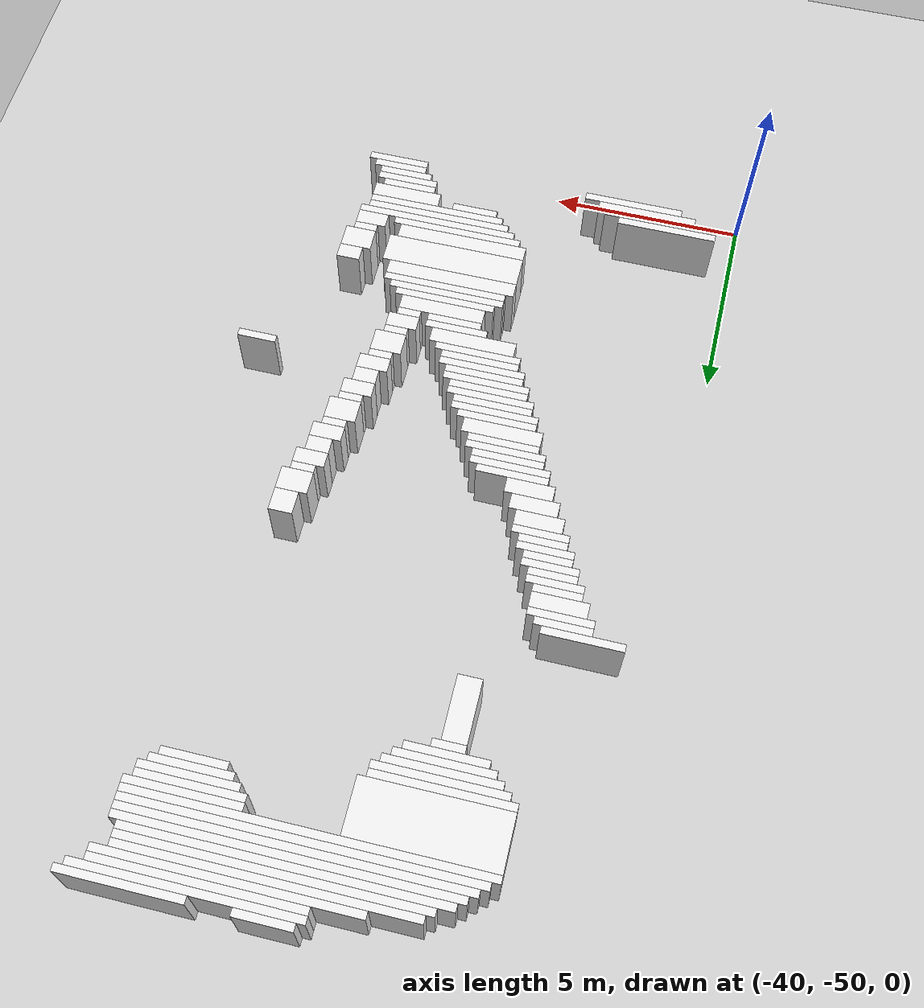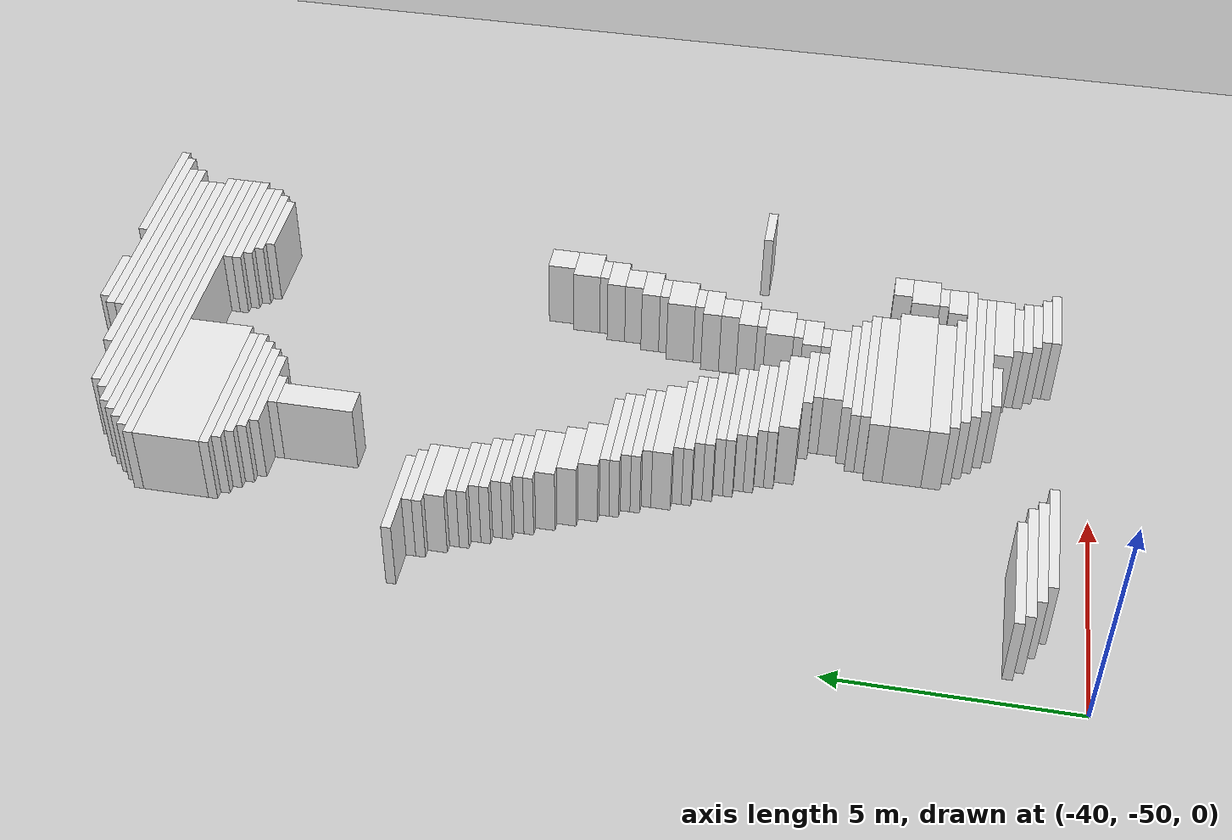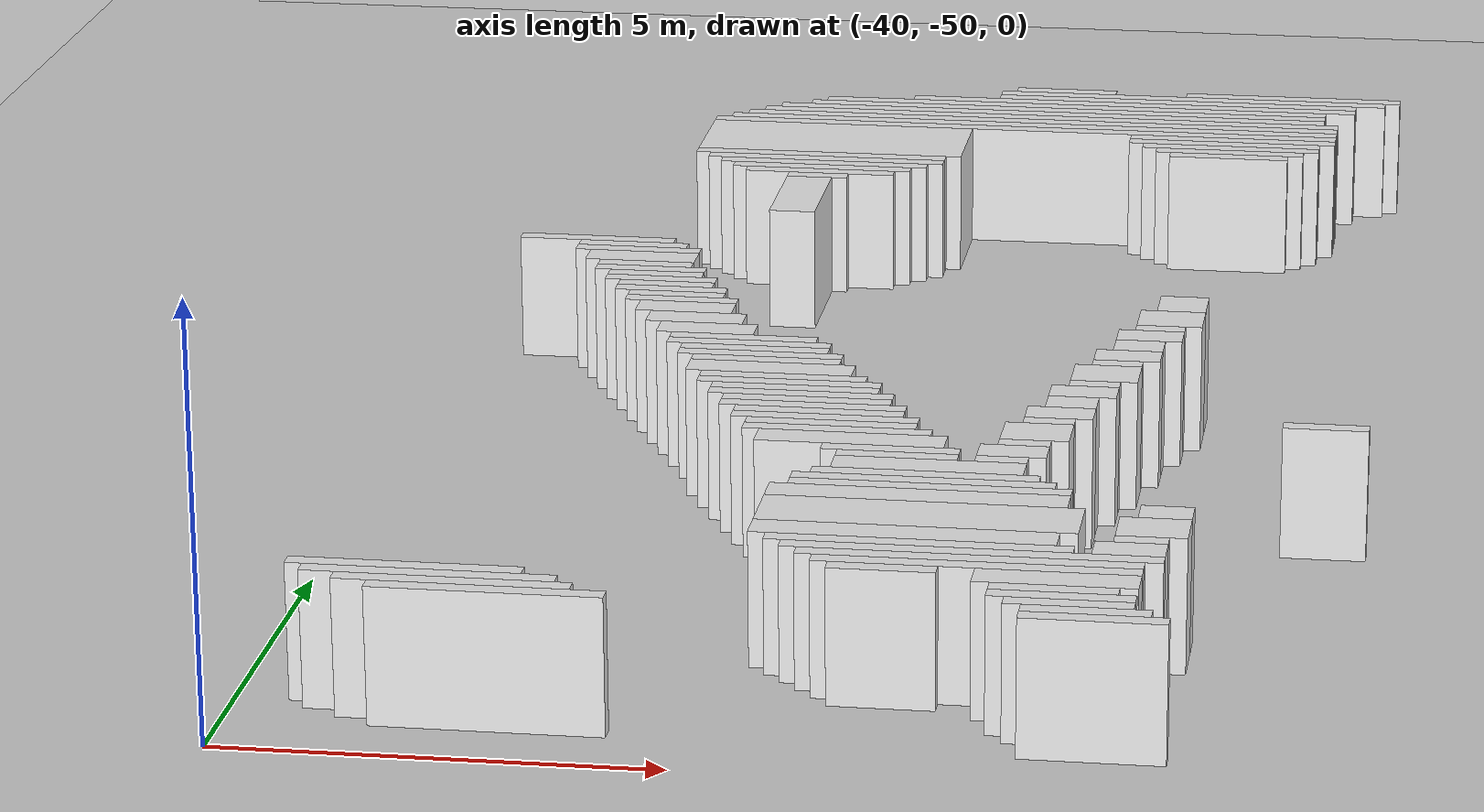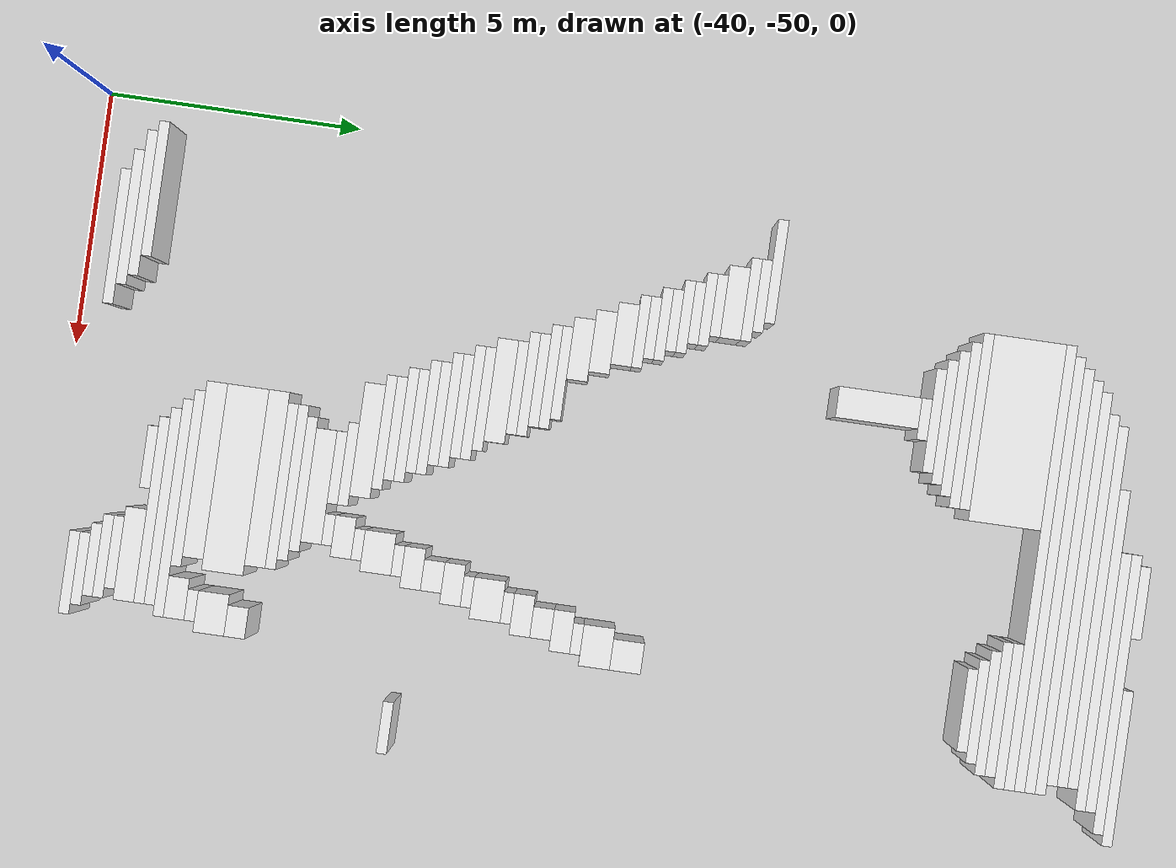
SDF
<sdf version="1.7">
 <world name="default">
  <model name="ground_plane">
   <static>1</static>
   <link name="link">
    <collision name="collision">
     <geometry><plane><normal>0 0 1</normal><size>120 120</size></plane></geometry>
    </collision>
    <visual name="visual">
     <geometry><plane><normal>0 0 1</normal><size>120 120</size></plane></geometry>
     <material>
      <script><uri>file://media/materials/scripts/gazebo.material</uri><name>Gazebo/Grey</name></script>
     </material>
    </visual>
   </link>
  </model>
  <model name="random_complex_01_model">
   <static>1</static>
   <link name="obs_2889">
    <pose>-32.9000 -28.7000 0.8000 0 0 0</pose>
    <collision name="obs_2889_col"><geometry><box><size>1.4000 0.2000 1.6000</size></box></geometry></collision>
    <visual name="obs_2889_vis">
     <geometry><box><size>1.4000 0.2000 1.6000</size></box></geometry>
     <material>
      <script><uri>file://media/materials/scripts/gazebo.material</uri><name>Gazebo/White</name></script>
     </material>
    </visual>
   </link>
   <link name="obs_2890">
    <pose>-29.7000 -28.7000 0.8000 0 0 0</pose>
    <collision name="obs_2890_col"><geometry><box><size>3.0000 0.2000 1.6000</size></box></geometry></collision>
    <visual name="obs_2890_vis">
     <geometry><box><size>3.0000 0.2000 1.6000</size></box></geometry>
     <material>
      <script><uri>file://media/materials/scripts/gazebo.material</uri><name>Gazebo/White</name></script>
     </material>
    </visual>
   </link>
   <link name="obs_2899">
    <pose>-31.1000 -28.9000 0.8000 0 0 0</pose>
    <collision name="obs_2899_col"><geometry><box><size>5.4000 0.2000 1.6000</size></box></geometry></collision>
    <visual name="obs_2899_vis">
     <geometry><box><size>5.4000 0.2000 1.6000</size></box></geometry>
     <material>
      <script><uri>file://media/materials/scripts/gazebo.material</uri><name>Gazebo/White</name></script>
     </material>
    </visual>
   </link>
   <link name="obs_2905">
    <pose>-31.3000 -29.1000 0.8000 0 0 0</pose>
    <collision name="obs_2905_col"><geometry><box><size>5.0000 0.2000 1.6000</size></box></geometry></collision>
    <visual name="obs_2905_vis">
     <geometry><box><size>5.0000 0.2000 1.6000</size></box></geometry>
     <material>
      <script><uri>file://media/materials/scripts/gazebo.material</uri><name>Gazebo/White</name></script>
     </material>
    </visual>
   </link>
   <link name="obs_2912">
    <pose>-31.9000 -29.3000 0.8000 0 0 0</pose>
    <collision name="obs_2912_col"><geometry><box><size>6.2000 0.2000 1.6000</size></box></geometry></collision>
    <visual name="obs_2912_vis">
     <geometry><box><size>6.2000 0.2000 1.6000</size></box></geometry>
     <material>
      <script><uri>file://media/materials/scripts/gazebo.material</uri><name>Gazebo/White</name></script>
     </material>
    </visual>
   </link>
   <link name="obs_2917">
    <pose>-32.7000 -29.5000 0.8000 0 0 0</pose>
    <collision name="obs_2917_col"><geometry><box><size>7.0000 0.2000 1.6000</size></box></geometry></collision>
    <visual name="obs_2917_vis">
     <geometry><box><size>7.0000 0.2000 1.6000</size></box></geometry>
     <material>
      <script><uri>file://media/materials/scripts/gazebo.material</uri><name>Gazebo/White</name></script>
     </material>
    </visual>
   </link>
   <link name="obs_2924">
    <pose>-32.8000 -29.7000 0.8000 0 0 0</pose>
    <collision name="obs_2924_col"><geometry><box><size>7.2000 0.2000 1.6000</size></box></geometry></collision>
    <visual name="obs_2924_vis">
     <geometry><box><size>7.2000 0.2000 1.6000</size></box></geometry>
     <material>
      <script><uri>file://media/materials/scripts/gazebo.material</uri><name>Gazebo/White</name></script>
     </material>
    </visual>
   </link>
   <link name="obs_2931">
    <pose>-33.0000 -29.9000 0.8000 0 0 0</pose>
    <collision name="obs_2931_col"><geometry><box><size>7.6000 0.2000 1.6000</size></box></geometry></collision>
    <visual name="obs_2931_vis">
     <geometry><box><size>7.6000 0.2000 1.6000</size></box></geometry>
     <material>
      <script><uri>file://media/materials/scripts/gazebo.material</uri><name>Gazebo/White</name></script>
     </material>
    </visual>
   </link>
   <link name="obs_2938">
    <pose>-33.0000 -30.1000 0.8000 0 0 0</pose>
    <collision name="obs_2938_col"><geometry><box><size>8.0000 0.2000 1.6000</size></box></geometry></collision>
    <visual name="obs_2938_vis">
     <geometry><box><size>8.0000 0.2000 1.6000</size></box></geometry>
     <material>
      <script><uri>file://media/materials/scripts/gazebo.material</uri><name>Gazebo/White</name></script>
     </material>
    </visual>
   </link>
   <link name="obs_2944">
    <pose>-33.1000 -30.3000 0.8000 0 0 0</pose>
    <collision name="obs_2944_col"><geometry><box><size>8.2000 0.2000 1.6000</size></box></geometry></collision>
    <visual name="obs_2944_vis">
     <geometry><box><size>8.2000 0.2000 1.6000</size></box></geometry>
     <material>
      <script><uri>file://media/materials/scripts/gazebo.material</uri><name>Gazebo/White</name></script>
     </material>
    </visual>
   </link>
   <link name="obs_2950">
    <pose>-33.2000 -30.5000 0.8000 0 0 0</pose>
    <collision name="obs_2950_col"><geometry><box><size>8.4000 0.2000 1.6000</size></box></geometry></collision>
    <visual name="obs_2950_vis">
     <geometry><box><size>8.4000 0.2000 1.6000</size></box></geometry>
     <material>
      <script><uri>file://media/materials/scripts/gazebo.material</uri><name>Gazebo/White</name></script>
     </material>
    </visual>
   </link>
   <link name="obs_2957">
    <pose>-33.3000 -30.7000 0.8000 0 0 0</pose>
    <collision name="obs_2957_col"><geometry><box><size>8.6000 0.2000 1.6000</size></box></geometry></collision>
    <visual name="obs_2957_vis">
     <geometry><box><size>8.6000 0.2000 1.6000</size></box></geometry>
     <material>
      <script><uri>file://media/materials/scripts/gazebo.material</uri><name>Gazebo/White</name></script>
     </material>
    </visual>
   </link>
   <link name="obs_2964">
    <pose>-30.4000 -30.9000 0.8000 0 0 0</pose>
    <collision name="obs_2964_col"><geometry><box><size>2.8000 0.2000 1.6000</size></box></geometry></collision>
    <visual name="obs_2964_vis">
     <geometry><box><size>2.8000 0.2000 1.6000</size></box></geometry>
     <material>
      <script><uri>file://media/materials/scripts/gazebo.material</uri><name>Gazebo/White</name></script>
     </material>
    </visual>
   </link>
   <link name="obs_2970">
    <pose>-30.5000 -31.1000 0.8000 0 0 0</pose>
    <collision name="obs_2970_col"><geometry><box><size>2.6000 0.2000 1.6000</size></box></geometry></collision>
    <visual name="obs_2970_vis">
     <geometry><box><size>2.6000 0.2000 1.6000</size></box></geometry>
     <material>
      <script><uri>file://media/materials/scripts/gazebo.material</uri><name>Gazebo/White</name></script>
     </material>
    </visual>
   </link>
   <link name="obs_2977">
    <pose>-30.4000 -31.3000 0.8000 0 0 0</pose>
    <collision name="obs_2977_col"><geometry><box><size>2.4000 0.2000 1.6000</size></box></geometry></collision>
    <visual name="obs_2977_vis">
     <geometry><box><size>2.4000 0.2000 1.6000</size></box></geometry>
     <material>
      <script><uri>file://media/materials/scripts/gazebo.material</uri><name>Gazebo/White</name></script>
     </material>
    </visual>
   </link>
   <link name="obs_2982">
    <pose>-30.4000 -31.5000 0.8000 0 0 0</pose>
    <collision name="obs_2982_col"><geometry><box><size>2.0000 0.2000 1.6000</size></box></geometry></collision>
    <visual name="obs_2982_vis">
     <geometry><box><size>2.0000 0.2000 1.6000</size></box></geometry>
     <material>
      <script><uri>file://media/materials/scripts/gazebo.material</uri><name>Gazebo/White</name></script>
     </material>
    </visual>
   </link>
   <link name="obs_2988">
    <pose>-30.4000 -31.7000 0.8000 0 0 0</pose>
    <collision name="obs_2988_col"><geometry><box><size>1.6000 0.2000 1.6000</size></box></geometry></collision>
    <visual name="obs_2988_vis">
     <geometry><box><size>1.6000 0.2000 1.6000</size></box></geometry>
     <material>
      <script><uri>file://media/materials/scripts/gazebo.material</uri><name>Gazebo/White</name></script>
     </material>
    </visual>
   </link>
   <link name="obs_2999">
    <pose>-35.8000 -31.5000 0.8000 0 0 0</pose>
    <collision name="obs_2999_col"><geometry><box><size>3.6000 1.4000 1.6000</size></box></geometry></collision>
    <visual name="obs_2999_vis">
     <geometry><box><size>3.6000 1.4000 1.6000</size></box></geometry>
     <material>
      <script><uri>file://media/materials/scripts/gazebo.material</uri><name>Gazebo/White</name></script>
     </material>
    </visual>
   </link>
   <link name="obs_3007">
    <pose>-35.9000 -32.3000 0.8000 0 0 0</pose>
    <collision name="obs_3007_col"><geometry><box><size>3.4000 0.2000 1.6000</size></box></geometry></collision>
    <visual name="obs_3007_vis">
     <geometry><box><size>3.4000 0.2000 1.6000</size></box></geometry>
     <material>
      <script><uri>file://media/materials/scripts/gazebo.material</uri><name>Gazebo/White</name></script>
     </material>
    </visual>
   </link>
   <link name="obs_3015">
    <pose>-35.8000 -32.5000 0.8000 0 0 0</pose>
    <collision name="obs_3015_col"><geometry><box><size>3.2000 0.2000 1.6000</size></box></geometry></collision>
    <visual name="obs_3015_vis">
     <geometry><box><size>3.2000 0.2000 1.6000</size></box></geometry>
     <material>
      <script><uri>file://media/materials/scripts/gazebo.material</uri><name>Gazebo/White</name></script>
     </material>
    </visual>
   </link>
   <link name="obs_3022">
    <pose>-35.8000 -32.7000 0.8000 0 0 0</pose>
    <collision name="obs_3022_col"><geometry><box><size>2.8000 0.2000 1.6000</size></box></geometry></collision>
    <visual name="obs_3022_vis">
     <geometry><box><size>2.8000 0.2000 1.6000</size></box></geometry>
     <material>
      <script><uri>file://media/materials/scripts/gazebo.material</uri><name>Gazebo/White</name></script>
     </material>
    </visual>
   </link>
   <link name="obs_3031">
    <pose>-35.8000 -32.9000 0.8000 0 0 0</pose>
    <collision name="obs_3031_col"><geometry><box><size>2.4000 0.2000 1.6000</size></box></geometry></collision>
    <visual name="obs_3031_vis">
     <geometry><box><size>2.4000 0.2000 1.6000</size></box></geometry>
     <material>
      <script><uri>file://media/materials/scripts/gazebo.material</uri><name>Gazebo/White</name></script>
     </material>
    </visual>
   </link>
   <link name="obs_3039">
    <pose>-35.8000 -33.1000 0.8000 0 0 0</pose>
    <collision name="obs_3039_col"><geometry><box><size>2.0000 0.2000 1.6000</size></box></geometry></collision>
    <visual name="obs_3039_vis">
     <geometry><box><size>2.0000 0.2000 1.6000</size></box></geometry>
     <material>
      <script><uri>file://media/materials/scripts/gazebo.material</uri><name>Gazebo/White</name></script>
     </material>
    </visual>
   </link>
   <link name="obs_3049">
    <pose>-35.8000 -33.3000 0.8000 0 0 0</pose>
    <collision name="obs_3049_col"><geometry><box><size>0.8000 0.2000 1.6000</size></box></geometry></collision>
    <visual name="obs_3049_vis">
     <geometry><box><size>0.8000 0.2000 1.6000</size></box></geometry>
     <material>
      <script><uri>file://media/materials/scripts/gazebo.material</uri><name>Gazebo/White</name></script>
     </material>
    </visual>
   </link>
   <link name="obs_3105">
    <pose>-35.9000 -34.2000 0.8000 0 0 0</pose>
    <collision name="obs_3105_col"><geometry><box><size>0.6000 1.6000 1.6000</size></box></geometry></collision>
    <visual name="obs_3105_vis">
     <geometry><box><size>0.6000 1.6000 1.6000</size></box></geometry>
     <material>
      <script><uri>file://media/materials/scripts/gazebo.material</uri><name>Gazebo/White</name></script>
     </material>
    </visual>
   </link>
   <link name="obs_3171">
    <pose>-38.2000 -36.5000 0.8000 0 0 0</pose>
    <collision name="obs_3171_col"><geometry><box><size>2.0000 0.2000 1.6000</size></box></geometry></collision>
    <visual name="obs_3171_vis">
     <geometry><box><size>2.0000 0.2000 1.6000</size></box></geometry>
     <material>
      <script><uri>file://media/materials/scripts/gazebo.material</uri><name>Gazebo/White</name></script>
     </material>
    </visual>
   </link>
   <link name="obs_3178">
    <pose>-37.7000 -36.7000 0.8000 0 0 0</pose>
    <collision name="obs_3178_col"><geometry><box><size>1.4000 0.2000 1.6000</size></box></geometry></collision>
    <visual name="obs_3178_vis">
     <geometry><box><size>1.4000 0.2000 1.6000</size></box></geometry>
     <material>
      <script><uri>file://media/materials/scripts/gazebo.material</uri><name>Gazebo/White</name></script>
     </material>
    </visual>
   </link>
   <link name="obs_3185">
    <pose>-37.6000 -36.9000 0.8000 0 0 0</pose>
    <collision name="obs_3185_col"><geometry><box><size>1.6000 0.2000 1.6000</size></box></geometry></collision>
    <visual name="obs_3185_vis">
     <geometry><box><size>1.6000 0.2000 1.6000</size></box></geometry>
     <material>
      <script><uri>file://media/materials/scripts/gazebo.material</uri><name>Gazebo/White</name></script>
     </material>
    </visual>
   </link>
   <link name="obs_3197">
    <pose>-37.5000 -37.2000 0.8000 0 0 0</pose>
    <collision name="obs_3197_col"><geometry><box><size>1.4000 0.4000 1.6000</size></box></geometry></collision>
    <visual name="obs_3197_vis">
     <geometry><box><size>1.4000 0.4000 1.6000</size></box></geometry>
     <material>
      <script><uri>file://media/materials/scripts/gazebo.material</uri><name>Gazebo/White</name></script>
     </material>
    </visual>
   </link>
   <link name="obs_3205">
    <pose>-37.4000 -37.5000 0.8000 0 0 0</pose>
    <collision name="obs_3205_col"><geometry><box><size>1.2000 0.2000 1.6000</size></box></geometry></collision>
    <visual name="obs_3205_vis">
     <geometry><box><size>1.2000 0.2000 1.6000</size></box></geometry>
     <material>
      <script><uri>file://media/materials/scripts/gazebo.material</uri><name>Gazebo/White</name></script>
     </material>
    </visual>
   </link>
   <link name="obs_3212">
    <pose>-37.3000 -37.7000 0.8000 0 0 0</pose>
    <collision name="obs_3212_col"><geometry><box><size>1.4000 0.2000 1.6000</size></box></geometry></collision>
    <visual name="obs_3212_vis">
     <geometry><box><size>1.4000 0.2000 1.6000</size></box></geometry>
     <material>
      <script><uri>file://media/materials/scripts/gazebo.material</uri><name>Gazebo/White</name></script>
     </material>
    </visual>
   </link>
   <link name="obs_3221">
    <pose>-37.2000 -37.9000 0.8000 0 0 0</pose>
    <collision name="obs_3221_col"><geometry><box><size>1.2000 0.2000 1.6000</size></box></geometry></collision>
    <visual name="obs_3221_vis">
     <geometry><box><size>1.2000 0.2000 1.6000</size></box></geometry>
     <material>
      <script><uri>file://media/materials/scripts/gazebo.material</uri><name>Gazebo/White</name></script>
     </material>
    </visual>
   </link>
   <link name="obs_3229">
    <pose>-37.1000 -38.1000 0.8000 0 0 0</pose>
    <collision name="obs_3229_col"><geometry><box><size>1.4000 0.2000 1.6000</size></box></geometry></collision>
    <visual name="obs_3229_vis">
     <geometry><box><size>1.4000 0.2000 1.6000</size></box></geometry>
     <material>
      <script><uri>file://media/materials/scripts/gazebo.material</uri><name>Gazebo/White</name></script>
     </material>
    </visual>
   </link>
   <link name="obs_3237">
    <pose>-37.0000 -38.3000 0.8000 0 0 0</pose>
    <collision name="obs_3237_col"><geometry><box><size>1.2000 0.2000 1.6000</size></box></geometry></collision>
    <visual name="obs_3237_vis">
     <geometry><box><size>1.2000 0.2000 1.6000</size></box></geometry>
     <material>
      <script><uri>file://media/materials/scripts/gazebo.material</uri><name>Gazebo/White</name></script>
     </material>
    </visual>
   </link>
   <link name="obs_3243">
    <pose>-30.5000 -38.3000 0.8000 0 0 0</pose>
    <collision name="obs_3243_col"><geometry><box><size>0.6000 0.6000 1.6000</size></box></geometry></collision>
    <visual name="obs_3243_vis">
     <geometry><box><size>0.6000 0.6000 1.6000</size></box></geometry>
     <material>
      <script><uri>file://media/materials/scripts/gazebo.material</uri><name>Gazebo/White</name></script>
     </material>
    </visual>
   </link>
   <link name="obs_3246">
    <pose>-36.9000 -38.5000 0.8000 0 0 0</pose>
    <collision name="obs_3246_col"><geometry><box><size>1.4000 0.2000 1.6000</size></box></geometry></collision>
    <visual name="obs_3246_vis">
     <geometry><box><size>1.4000 0.2000 1.6000</size></box></geometry>
     <material>
      <script><uri>file://media/materials/scripts/gazebo.material</uri><name>Gazebo/White</name></script>
     </material>
    </visual>
   </link>
   <link name="obs_3253">
    <pose>-36.8000 -38.7000 0.8000 0 0 0</pose>
    <collision name="obs_3253_col"><geometry><box><size>1.2000 0.2000 1.6000</size></box></geometry></collision>
    <visual name="obs_3253_vis">
     <geometry><box><size>1.2000 0.2000 1.6000</size></box></geometry>
     <material>
      <script><uri>file://media/materials/scripts/gazebo.material</uri><name>Gazebo/White</name></script>
     </material>
    </visual>
   </link>
   <link name="obs_3260">
    <pose>-36.7000 -38.9000 0.8000 0 0 0</pose>
    <collision name="obs_3260_col"><geometry><box><size>1.4000 0.2000 1.6000</size></box></geometry></collision>
    <visual name="obs_3260_vis">
     <geometry><box><size>1.4000 0.2000 1.6000</size></box></geometry>
     <material>
      <script><uri>file://media/materials/scripts/gazebo.material</uri><name>Gazebo/White</name></script>
     </material>
    </visual>
   </link>
   <link name="obs_3267">
    <pose>-30.6000 -38.9000 0.8000 0 0 0</pose>
    <collision name="obs_3267_col"><geometry><box><size>0.8000 0.6000 1.6000</size></box></geometry></collision>
    <visual name="obs_3267_vis">
     <geometry><box><size>0.8000 0.6000 1.6000</size></box></geometry>
     <material>
      <script><uri>file://media/materials/scripts/gazebo.material</uri><name>Gazebo/White</name></script>
     </material>
    </visual>
   </link>
   <link name="obs_3272">
    <pose>-36.6000 -39.2000 0.8000 0 0 0</pose>
    <collision name="obs_3272_col"><geometry><box><size>1.2000 0.4000 1.6000</size></box></geometry></collision>
    <visual name="obs_3272_vis">
     <geometry><box><size>1.2000 0.4000 1.6000</size></box></geometry>
     <material>
      <script><uri>file://media/materials/scripts/gazebo.material</uri><name>Gazebo/White</name></script>
     </material>
    </visual>
   </link>
   <link name="obs_3274">
    <pose>-30.7000 -39.3000 0.8000 0 0 0</pose>
    <collision name="obs_3274_col"><geometry><box><size>0.6000 0.2000 1.6000</size></box></geometry></collision>
    <visual name="obs_3274_vis">
     <geometry><box><size>0.6000 0.2000 1.6000</size></box></geometry>
     <material>
      <script><uri>file://media/materials/scripts/gazebo.material</uri><name>Gazebo/White</name></script>
     </material>
    </visual>
   </link>
   <link name="obs_3284">
    <pose>-36.4000 -39.6000 0.8000 0 0 0</pose>
    <collision name="obs_3284_col"><geometry><box><size>1.2000 0.4000 1.6000</size></box></geometry></collision>
    <visual name="obs_3284_vis">
     <geometry><box><size>1.2000 0.4000 1.6000</size></box></geometry>
     <material>
      <script><uri>file://media/materials/scripts/gazebo.material</uri><name>Gazebo/White</name></script>
     </material>
    </visual>
   </link>
   <link name="obs_3285">
    <pose>-30.8000 -39.6000 0.8000 0 0 0</pose>
    <collision name="obs_3285_col"><geometry><box><size>0.8000 0.4000 1.6000</size></box></geometry></collision>
    <visual name="obs_3285_vis">
     <geometry><box><size>0.8000 0.4000 1.6000</size></box></geometry>
     <material>
      <script><uri>file://media/materials/scripts/gazebo.material</uri><name>Gazebo/White</name></script>
     </material>
    </visual>
   </link>
   <link name="obs_3298">
    <pose>-36.2000 -40.0000 0.8000 0 0 0</pose>
    <collision name="obs_3298_col"><geometry><box><size>1.2000 0.4000 1.6000</size></box></geometry></collision>
    <visual name="obs_3298_vis">
     <geometry><box><size>1.2000 0.4000 1.6000</size></box></geometry>
     <material>
      <script><uri>file://media/materials/scripts/gazebo.material</uri><name>Gazebo/White</name></script>
     </material>
    </visual>
   </link>
   <link name="obs_3299">
    <pose>-30.9000 -40.0000 0.8000 0 0 0</pose>
    <collision name="obs_3299_col"><geometry><box><size>0.6000 0.4000 1.6000</size></box></geometry></collision>
    <visual name="obs_3299_vis">
     <geometry><box><size>0.6000 0.4000 1.6000</size></box></geometry>
     <material>
      <script><uri>file://media/materials/scripts/gazebo.material</uri><name>Gazebo/White</name></script>
     </material>
    </visual>
   </link>
   <link name="obs_3309">
    <pose>-35.7000 -40.3000 0.8000 0 0 0</pose>
    <collision name="obs_3309_col"><geometry><box><size>1.8000 0.2000 1.6000</size></box></geometry></collision>
    <visual name="obs_3309_vis">
     <geometry><box><size>1.8000 0.2000 1.6000</size></box></geometry>
     <material>
      <script><uri>file://media/materials/scripts/gazebo.material</uri><name>Gazebo/White</name></script>
     </material>
    </visual>
   </link>
   <link name="obs_3315">
    <pose>-31.0000 -40.4000 0.8000 0 0 0</pose>
    <collision name="obs_3315_col"><geometry><box><size>0.8000 0.4000 1.6000</size></box></geometry></collision>
    <visual name="obs_3315_vis">
     <geometry><box><size>0.8000 0.4000 1.6000</size></box></geometry>
     <material>
      <script><uri>file://media/materials/scripts/gazebo.material</uri><name>Gazebo/White</name></script>
     </material>
    </visual>
   </link>
   <link name="obs_3318">
    <pose>-35.6000 -40.5000 0.8000 0 0 0</pose>
    <collision name="obs_3318_col"><geometry><box><size>2.0000 0.2000 1.6000</size></box></geometry></collision>
    <visual name="obs_3318_vis">
     <geometry><box><size>2.0000 0.2000 1.6000</size></box></geometry>
     <material>
      <script><uri>file://media/materials/scripts/gazebo.material</uri><name>Gazebo/White</name></script>
     </material>
    </visual>
   </link>
   <link name="obs_3325">
    <pose>-35.5000 -40.7000 0.8000 0 0 0</pose>
    <collision name="obs_3325_col"><geometry><box><size>1.8000 0.2000 1.6000</size></box></geometry></collision>
    <visual name="obs_3325_vis">
     <geometry><box><size>1.8000 0.2000 1.6000</size></box></geometry>
     <material>
      <script><uri>file://media/materials/scripts/gazebo.material</uri><name>Gazebo/White</name></script>
     </material>
    </visual>
   </link>
   <link name="obs_3326">
    <pose>-31.1000 -40.7000 0.8000 0 0 0</pose>
    <collision name="obs_3326_col"><geometry><box><size>0.6000 0.2000 1.6000</size></box></geometry></collision>
    <visual name="obs_3326_vis">
     <geometry><box><size>0.6000 0.2000 1.6000</size></box></geometry>
     <material>
      <script><uri>file://media/materials/scripts/gazebo.material</uri><name>Gazebo/White</name></script>
     </material>
    </visual>
   </link>
   <link name="obs_3335">
    <pose>-35.4000 -40.9000 0.8000 0 0 0</pose>
    <collision name="obs_3335_col"><geometry><box><size>2.0000 0.2000 1.6000</size></box></geometry></collision>
    <visual name="obs_3335_vis">
     <geometry><box><size>2.0000 0.2000 1.6000</size></box></geometry>
     <material>
      <script><uri>file://media/materials/scripts/gazebo.material</uri><name>Gazebo/White</name></script>
     </material>
    </visual>
   </link>
   <link name="obs_3342">
    <pose>-35.3000 -41.1000 0.8000 0 0 0</pose>
    <collision name="obs_3342_col"><geometry><box><size>1.8000 0.2000 1.6000</size></box></geometry></collision>
    <visual name="obs_3342_vis">
     <geometry><box><size>1.8000 0.2000 1.6000</size></box></geometry>
     <material>
      <script><uri>file://media/materials/scripts/gazebo.material</uri><name>Gazebo/White</name></script>
     </material>
    </visual>
   </link>
   <link name="obs_3348">
    <pose>-31.2000 -41.1000 0.8000 0 0 0</pose>
    <collision name="obs_3348_col"><geometry><box><size>0.8000 0.6000 1.6000</size></box></geometry></collision>
    <visual name="obs_3348_vis">
     <geometry><box><size>0.8000 0.6000 1.6000</size></box></geometry>
     <material>
      <script><uri>file://media/materials/scripts/gazebo.material</uri><name>Gazebo/White</name></script>
     </material>
    </visual>
   </link>
   <link name="obs_3355">
    <pose>-35.2000 -41.4000 0.8000 0 0 0</pose>
    <collision name="obs_3355_col"><geometry><box><size>2.0000 0.4000 1.6000</size></box></geometry></collision>
    <visual name="obs_3355_vis">
     <geometry><box><size>2.0000 0.4000 1.6000</size></box></geometry>
     <material>
      <script><uri>file://media/materials/scripts/gazebo.material</uri><name>Gazebo/White</name></script>
     </material>
    </visual>
   </link>
   <link name="obs_3358">
    <pose>-31.3000 -41.5000 0.8000 0 0 0</pose>
    <collision name="obs_3358_col"><geometry><box><size>0.6000 0.2000 1.6000</size></box></geometry></collision>
    <visual name="obs_3358_vis">
     <geometry><box><size>0.6000 0.2000 1.6000</size></box></geometry>
     <material>
      <script><uri>file://media/materials/scripts/gazebo.material</uri><name>Gazebo/White</name></script>
     </material>
    </visual>
   </link>
   <link name="obs_3364">
    <pose>-35.0000 -41.7000 0.8000 0 0 0</pose>
    <collision name="obs_3364_col"><geometry><box><size>2.0000 0.2000 1.6000</size></box></geometry></collision>
    <visual name="obs_3364_vis">
     <geometry><box><size>2.0000 0.2000 1.6000</size></box></geometry>
     <material>
      <script><uri>file://media/materials/scripts/gazebo.material</uri><name>Gazebo/White</name></script>
     </material>
    </visual>
   </link>
   <link name="obs_3370">
    <pose>-31.4000 -41.8000 0.8000 0 0 0</pose>
    <collision name="obs_3370_col"><geometry><box><size>0.8000 0.4000 1.6000</size></box></geometry></collision>
    <visual name="obs_3370_vis">
     <geometry><box><size>0.8000 0.4000 1.6000</size></box></geometry>
     <material>
      <script><uri>file://media/materials/scripts/gazebo.material</uri><name>Gazebo/White</name></script>
     </material>
    </visual>
   </link>
   <link name="obs_3372">
    <pose>-34.9000 -41.9000 0.8000 0 0 0</pose>
    <collision name="obs_3372_col"><geometry><box><size>2.2000 0.2000 1.6000</size></box></geometry></collision>
    <visual name="obs_3372_vis">
     <geometry><box><size>2.2000 0.2000 1.6000</size></box></geometry>
     <material>
      <script><uri>file://media/materials/scripts/gazebo.material</uri><name>Gazebo/White</name></script>
     </material>
    </visual>
   </link>
   <link name="obs_3379">
    <pose>-34.8000 -42.1000 0.8000 0 0 0</pose>
    <collision name="obs_3379_col"><geometry><box><size>2.0000 0.2000 1.6000</size></box></geometry></collision>
    <visual name="obs_3379_vis">
     <geometry><box><size>2.0000 0.2000 1.6000</size></box></geometry>
     <material>
      <script><uri>file://media/materials/scripts/gazebo.material</uri><name>Gazebo/White</name></script>
     </material>
    </visual>
   </link>
   <link name="obs_3387">
    <pose>-31.5000 -42.2000 0.8000 0 0 0</pose>
    <collision name="obs_3387_col"><geometry><box><size>0.6000 0.4000 1.6000</size></box></geometry></collision>
    <visual name="obs_3387_vis">
     <geometry><box><size>0.6000 0.4000 1.6000</size></box></geometry>
     <material>
      <script><uri>file://media/materials/scripts/gazebo.material</uri><name>Gazebo/White</name></script>
     </material>
    </visual>
   </link>
   <link name="obs_3388">
    <pose>-34.7000 -42.3000 0.8000 0 0 0</pose>
    <collision name="obs_3388_col"><geometry><box><size>2.2000 0.2000 1.6000</size></box></geometry></collision>
    <visual name="obs_3388_vis">
     <geometry><box><size>2.2000 0.2000 1.6000</size></box></geometry>
     <material>
      <script><uri>file://media/materials/scripts/gazebo.material</uri><name>Gazebo/White</name></script>
     </material>
    </visual>
   </link>
   <link name="obs_3396">
    <pose>-34.6000 -42.5000 0.8000 0 0 0</pose>
    <collision name="obs_3396_col"><geometry><box><size>2.0000 0.2000 1.6000</size></box></geometry></collision>
    <visual name="obs_3396_vis">
     <geometry><box><size>2.0000 0.2000 1.6000</size></box></geometry>
     <material>
      <script><uri>file://media/materials/scripts/gazebo.material</uri><name>Gazebo/White</name></script>
     </material>
    </visual>
   </link>
   <link name="obs_3403">
    <pose>-31.6000 -42.6000 0.8000 0 0 0</pose>
    <collision name="obs_3403_col"><geometry><box><size>0.8000 0.4000 1.6000</size></box></geometry></collision>
    <visual name="obs_3403_vis">
     <geometry><box><size>0.8000 0.4000 1.6000</size></box></geometry>
     <material>
      <script><uri>file://media/materials/scripts/gazebo.material</uri><name>Gazebo/White</name></script>
     </material>
    </visual>
   </link>
   <link name="obs_3404">
    <pose>-34.5000 -42.7000 0.8000 0 0 0</pose>
    <collision name="obs_3404_col"><geometry><box><size>2.2000 0.2000 1.6000</size></box></geometry></collision>
    <visual name="obs_3404_vis">
     <geometry><box><size>2.2000 0.2000 1.6000</size></box></geometry>
     <material>
      <script><uri>file://media/materials/scripts/gazebo.material</uri><name>Gazebo/White</name></script>
     </material>
    </visual>
   </link>
   <link name="obs_3405">
    <pose>-28.5000 -42.7000 0.8000 0 0 0</pose>
    <collision name="obs_3405_col"><geometry><box><size>1.0000 0.2000 1.6000</size></box></geometry></collision>
    <visual name="obs_3405_vis">
     <geometry><box><size>1.0000 0.2000 1.6000</size></box></geometry>
     <material>
      <script><uri>file://media/materials/scripts/gazebo.material</uri><name>Gazebo/White</name></script>
     </material>
    </visual>
   </link>
   <link name="obs_3411">
    <pose>-34.4000 -42.9000 0.8000 0 0 0</pose>
    <collision name="obs_3411_col"><geometry><box><size>2.0000 0.2000 1.6000</size></box></geometry></collision>
    <visual name="obs_3411_vis">
     <geometry><box><size>2.0000 0.2000 1.6000</size></box></geometry>
     <material>
      <script><uri>file://media/materials/scripts/gazebo.material</uri><name>Gazebo/White</name></script>
     </material>
    </visual>
   </link>
   <link name="obs_3412">
    <pose>-31.7000 -42.9000 0.8000 0 0 0</pose>
    <collision name="obs_3412_col"><geometry><box><size>0.6000 0.2000 1.6000</size></box></geometry></collision>
    <visual name="obs_3412_vis">
     <geometry><box><size>0.6000 0.2000 1.6000</size></box></geometry>
     <material>
      <script><uri>file://media/materials/scripts/gazebo.material</uri><name>Gazebo/White</name></script>
     </material>
    </visual>
   </link>
   <link name="obs_3417">
    <pose>-34.3000 -43.1000 0.8000 0 0 0</pose>
    <collision name="obs_3417_col"><geometry><box><size>2.2000 0.2000 1.6000</size></box></geometry></collision>
    <visual name="obs_3417_vis">
     <geometry><box><size>2.2000 0.2000 1.6000</size></box></geometry>
     <material>
      <script><uri>file://media/materials/scripts/gazebo.material</uri><name>Gazebo/White</name></script>
     </material>
    </visual>
   </link>
   <link name="obs_3423">
    <pose>-34.2000 -43.3000 0.8000 0 0 0</pose>
    <collision name="obs_3423_col"><geometry><box><size>2.0000 0.2000 1.6000</size></box></geometry></collision>
    <visual name="obs_3423_vis">
     <geometry><box><size>2.0000 0.2000 1.6000</size></box></geometry>
     <material>
      <script><uri>file://media/materials/scripts/gazebo.material</uri><name>Gazebo/White</name></script>
     </material>
    </visual>
   </link>
   <link name="obs_3429">
    <pose>-31.8000 -43.3000 0.8000 0 0 0</pose>
    <collision name="obs_3429_col"><geometry><box><size>0.8000 0.6000 1.6000</size></box></geometry></collision>
    <visual name="obs_3429_vis">
     <geometry><box><size>0.8000 0.6000 1.6000</size></box></geometry>
     <material>
      <script><uri>file://media/materials/scripts/gazebo.material</uri><name>Gazebo/White</name></script>
     </material>
    </visual>
   </link>
   <link name="obs_3430">
    <pose>-34.1000 -43.5000 0.8000 0 0 0</pose>
    <collision name="obs_3430_col"><geometry><box><size>2.2000 0.2000 1.6000</size></box></geometry></collision>
    <visual name="obs_3430_vis">
     <geometry><box><size>2.2000 0.2000 1.6000</size></box></geometry>
     <material>
      <script><uri>file://media/materials/scripts/gazebo.material</uri><name>Gazebo/White</name></script>
     </material>
    </visual>
   </link>
   <link name="obs_3435">
    <pose>-31.9000 -43.7000 0.8000 0 0 0</pose>
    <collision name="obs_3435_col"><geometry><box><size>0.6000 0.2000 1.6000</size></box></geometry></collision>
    <visual name="obs_3435_vis">
     <geometry><box><size>0.6000 0.2000 1.6000</size></box></geometry>
     <material>
      <script><uri>file://media/materials/scripts/gazebo.material</uri><name>Gazebo/White</name></script>
     </material>
    </visual>
   </link>
   <link name="obs_3440">
    <pose>-33.9000 -43.8000 0.8000 0 0 0</pose>
    <collision name="obs_3440_col"><geometry><box><size>2.2000 0.4000 1.6000</size></box></geometry></collision>
    <visual name="obs_3440_vis">
     <geometry><box><size>2.2000 0.4000 1.6000</size></box></geometry>
     <material>
      <script><uri>file://media/materials/scripts/gazebo.material</uri><name>Gazebo/White</name></script>
     </material>
    </visual>
   </link>
   <link name="obs_3444">
    <pose>-32.0000 -44.0000 0.8000 0 0 0</pose>
    <collision name="obs_3444_col"><geometry><box><size>0.8000 0.4000 1.6000</size></box></geometry></collision>
    <visual name="obs_3444_vis">
     <geometry><box><size>0.8000 0.4000 1.6000</size></box></geometry>
     <material>
      <script><uri>file://media/materials/scripts/gazebo.material</uri><name>Gazebo/White</name></script>
     </material>
    </visual>
   </link>
   <link name="obs_3445">
    <pose>-33.4000 -44.1000 0.8000 0 0 0</pose>
    <collision name="obs_3445_col"><geometry><box><size>1.6000 0.2000 1.6000</size></box></geometry></collision>
    <visual name="obs_3445_vis">
     <geometry><box><size>1.6000 0.2000 1.6000</size></box></geometry>
     <material>
      <script><uri>file://media/materials/scripts/gazebo.material</uri><name>Gazebo/White</name></script>
     </material>
    </visual>
   </link>
   <link name="obs_3451">
    <pose>-33.3000 -44.3000 0.8000 0 0 0</pose>
    <collision name="obs_3451_col"><geometry><box><size>1.4000 0.2000 1.6000</size></box></geometry></collision>
    <visual name="obs_3451_vis">
     <geometry><box><size>1.4000 0.2000 1.6000</size></box></geometry>
     <material>
      <script><uri>file://media/materials/scripts/gazebo.material</uri><name>Gazebo/White</name></script>
     </material>
    </visual>
   </link>
   <link name="obs_3452">
    <pose>-32.1000 -44.3000 0.8000 0 0 0</pose>
    <collision name="obs_3452_col"><geometry><box><size>0.6000 0.2000 1.6000</size></box></geometry></collision>
    <visual name="obs_3452_vis">
     <geometry><box><size>0.6000 0.2000 1.6000</size></box></geometry>
     <material>
      <script><uri>file://media/materials/scripts/gazebo.material</uri><name>Gazebo/White</name></script>
     </material>
    </visual>
   </link>
   <link name="obs_3459">
    <pose>-32.9000 -44.6000 0.8000 0 0 0</pose>
    <collision name="obs_3459_col"><geometry><box><size>2.2000 0.4000 1.6000</size></box></geometry></collision>
    <visual name="obs_3459_vis">
     <geometry><box><size>2.2000 0.4000 1.6000</size></box></geometry>
     <material>
      <script><uri>file://media/materials/scripts/gazebo.material</uri><name>Gazebo/White</name></script>
     </material>
    </visual>
   </link>
   <link name="obs_3464">
    <pose>-32.9000 -44.9000 0.8000 0 0 0</pose>
    <collision name="obs_3464_col"><geometry><box><size>2.6000 0.2000 1.6000</size></box></geometry></collision>
    <visual name="obs_3464_vis">
     <geometry><box><size>2.6000 0.2000 1.6000</size></box></geometry>
     <material>
      <script><uri>file://media/materials/scripts/gazebo.material</uri><name>Gazebo/White</name></script>
     </material>
    </visual>
   </link>
   <link name="obs_3473">
    <pose>-32.9000 -45.1000 0.8000 0 0 0</pose>
    <collision name="obs_3473_col"><geometry><box><size>3.0000 0.2000 1.6000</size></box></geometry></collision>
    <visual name="obs_3473_vis">
     <geometry><box><size>3.0000 0.2000 1.6000</size></box></geometry>
     <material>
      <script><uri>file://media/materials/scripts/gazebo.material</uri><name>Gazebo/White</name></script>
     </material>
    </visual>
   </link>
   <link name="obs_3482">
    <pose>-32.8000 -45.3000 0.8000 0 0 0</pose>
    <collision name="obs_3482_col"><geometry><box><size>3.2000 0.2000 1.6000</size></box></geometry></collision>
    <visual name="obs_3482_vis">
     <geometry><box><size>3.2000 0.2000 1.6000</size></box></geometry>
     <material>
      <script><uri>file://media/materials/scripts/gazebo.material</uri><name>Gazebo/White</name></script>
     </material>
    </visual>
   </link>
   <link name="obs_3496">
    <pose>-32.9000 -45.6000 0.8000 0 0 0</pose>
    <collision name="obs_3496_col"><geometry><box><size>3.4000 0.4000 1.6000</size></box></geometry></collision>
    <visual name="obs_3496_vis">
     <geometry><box><size>3.4000 0.4000 1.6000</size></box></geometry>
     <material>
      <script><uri>file://media/materials/scripts/gazebo.material</uri><name>Gazebo/White</name></script>
     </material>
    </visual>
   </link>
   <link name="obs_3506">
    <pose>-30.1000 -45.8000 0.8000 0 0 0</pose>
    <collision name="obs_3506_col"><geometry><box><size>0.6000 0.4000 1.6000</size></box></geometry></collision>
    <visual name="obs_3506_vis">
     <geometry><box><size>0.6000 0.4000 1.6000</size></box></geometry>
     <material>
      <script><uri>file://media/materials/scripts/gazebo.material</uri><name>Gazebo/White</name></script>
     </material>
    </visual>
   </link>
   <link name="obs_3522">
    <pose>-32.8000 -46.2000 0.8000 0 0 0</pose>
    <collision name="obs_3522_col"><geometry><box><size>3.6000 0.8000 1.6000</size></box></geometry></collision>
    <visual name="obs_3522_vis">
     <geometry><box><size>3.6000 0.8000 1.6000</size></box></geometry>
     <material>
      <script><uri>file://media/materials/scripts/gazebo.material</uri><name>Gazebo/White</name></script>
     </material>
    </visual>
   </link>
   <link name="obs_3523">
    <pose>-30.2000 -46.3000 0.8000 0 0 0</pose>
    <collision name="obs_3523_col"><geometry><box><size>0.8000 0.6000 1.6000</size></box></geometry></collision>
    <visual name="obs_3523_vis">
     <geometry><box><size>0.8000 0.6000 1.6000</size></box></geometry>
     <material>
      <script><uri>file://media/materials/scripts/gazebo.material</uri><name>Gazebo/White</name></script>
     </material>
    </visual>
   </link>
   <link name="obs_3531">
    <pose>-30.3000 -46.7000 0.8000 0 0 0</pose>
    <collision name="obs_3531_col"><geometry><box><size>0.6000 0.2000 1.6000</size></box></geometry></collision>
    <visual name="obs_3531_vis">
     <geometry><box><size>0.6000 0.2000 1.6000</size></box></geometry>
     <material>
      <script><uri>file://media/materials/scripts/gazebo.material</uri><name>Gazebo/White</name></script>
     </material>
    </visual>
   </link>
   <link name="obs_3537">
    <pose>-32.9000 -46.8000 0.8000 0 0 0</pose>
    <collision name="obs_3537_col"><geometry><box><size>3.4000 0.4000 1.6000</size></box></geometry></collision>
    <visual name="obs_3537_vis">
     <geometry><box><size>3.4000 0.4000 1.6000</size></box></geometry>
     <material>
      <script><uri>file://media/materials/scripts/gazebo.material</uri><name>Gazebo/White</name></script>
     </material>
    </visual>
   </link>
   <link name="obs_3544">
    <pose>-30.4000 -47.0000 0.8000 0 0 0</pose>
    <collision name="obs_3544_col"><geometry><box><size>0.8000 0.4000 1.6000</size></box></geometry></collision>
    <visual name="obs_3544_vis">
     <geometry><box><size>0.8000 0.4000 1.6000</size></box></geometry>
     <material>
      <script><uri>file://media/materials/scripts/gazebo.material</uri><name>Gazebo/White</name></script>
     </material>
    </visual>
   </link>
   <link name="obs_3547">
    <pose>-32.7000 -47.1000 0.8000 0 0 0</pose>
    <collision name="obs_3547_col"><geometry><box><size>3.4000 0.2000 1.6000</size></box></geometry></collision>
    <visual name="obs_3547_vis">
     <geometry><box><size>3.4000 0.2000 1.6000</size></box></geometry>
     <material>
      <script><uri>file://media/materials/scripts/gazebo.material</uri><name>Gazebo/White</name></script>
     </material>
    </visual>
   </link>
   <link name="obs_3555">
    <pose>-32.1000 -47.3000 0.8000 0 0 0</pose>
    <collision name="obs_3555_col"><geometry><box><size>4.2000 0.2000 1.6000</size></box></geometry></collision>
    <visual name="obs_3555_vis">
     <geometry><box><size>4.2000 0.2000 1.6000</size></box></geometry>
     <material>
      <script><uri>file://media/materials/scripts/gazebo.material</uri><name>Gazebo/White</name></script>
     </material>
    </visual>
   </link>
   <link name="obs_3563">
    <pose>-32.1000 -47.5000 0.8000 0 0 0</pose>
    <collision name="obs_3563_col"><geometry><box><size>3.8000 0.2000 1.6000</size></box></geometry></collision>
    <visual name="obs_3563_vis">
     <geometry><box><size>3.8000 0.2000 1.6000</size></box></geometry>
     <material>
      <script><uri>file://media/materials/scripts/gazebo.material</uri><name>Gazebo/White</name></script>
     </material>
    </visual>
   </link>
   <link name="obs_3571">
    <pose>-32.0000 -47.7000 0.8000 0 0 0</pose>
    <collision name="obs_3571_col"><geometry><box><size>3.6000 0.2000 1.6000</size></box></geometry></collision>
    <visual name="obs_3571_vis">
     <geometry><box><size>3.6000 0.2000 1.6000</size></box></geometry>
     <material>
      <script><uri>file://media/materials/scripts/gazebo.material</uri><name>Gazebo/White</name></script>
     </material>
    </visual>
   </link>
   <link name="obs_3579">
    <pose>-33.0000 -47.9000 0.8000 0 0 0</pose>
    <collision name="obs_3579_col"><geometry><box><size>1.2000 0.2000 1.6000</size></box></geometry></collision>
    <visual name="obs_3579_vis">
     <geometry><box><size>1.2000 0.2000 1.6000</size></box></geometry>
     <material>
      <script><uri>file://media/materials/scripts/gazebo.material</uri><name>Gazebo/White</name></script>
     </material>
    </visual>
   </link>
   <link name="obs_3584">
    <pose>-31.1000 -48.0000 0.8000 0 0 0</pose>
    <collision name="obs_3584_col"><geometry><box><size>1.8000 0.4000 1.6000</size></box></geometry></collision>
    <visual name="obs_3584_vis">
     <geometry><box><size>1.8000 0.4000 1.6000</size></box></geometry>
     <material>
      <script><uri>file://media/materials/scripts/gazebo.material</uri><name>Gazebo/White</name></script>
     </material>
    </visual>
   </link>
   <link name="obs_3595">
    <pose>-31.1000 -48.3000 0.8000 0 0 0</pose>
    <collision name="obs_3595_col"><geometry><box><size>1.4000 0.2000 1.6000</size></box></geometry></collision>
    <visual name="obs_3595_vis">
     <geometry><box><size>1.4000 0.2000 1.6000</size></box></geometry>
     <material>
      <script><uri>file://media/materials/scripts/gazebo.material</uri><name>Gazebo/White</name></script>
     </material>
    </visual>
   </link>
   <link name="obs_3601">
    <pose>-38.1000 -48.5000 0.8000 0 0 0</pose>
    <collision name="obs_3601_col"><geometry><box><size>2.6000 0.2000 1.6000</size></box></geometry></collision>
    <visual name="obs_3601_vis">
     <geometry><box><size>2.6000 0.2000 1.6000</size></box></geometry>
     <material>
      <script><uri>file://media/materials/scripts/gazebo.material</uri><name>Gazebo/White</name></script>
     </material>
    </visual>
   </link>
   <link name="obs_3602">
    <pose>-31.0000 -48.5000 0.8000 0 0 0</pose>
    <collision name="obs_3602_col"><geometry><box><size>1.6000 0.2000 1.6000</size></box></geometry></collision>
    <visual name="obs_3602_vis">
     <geometry><box><size>1.6000 0.2000 1.6000</size></box></geometry>
     <material>
      <script><uri>file://media/materials/scripts/gazebo.material</uri><name>Gazebo/White</name></script>
     </material>
    </visual>
   </link>
   <link name="obs_3610">
    <pose>-37.8000 -48.7000 0.8000 0 0 0</pose>
    <collision name="obs_3610_col"><geometry><box><size>2.8000 0.2000 1.6000</size></box></geometry></collision>
    <visual name="obs_3610_vis">
     <geometry><box><size>2.8000 0.2000 1.6000</size></box></geometry>
     <material>
      <script><uri>file://media/materials/scripts/gazebo.material</uri><name>Gazebo/White</name></script>
     </material>
    </visual>
   </link>
   <link name="obs_3611">
    <pose>-30.9000 -48.7000 0.8000 0 0 0</pose>
    <collision name="obs_3611_col"><geometry><box><size>1.4000 0.2000 1.6000</size></box></geometry></collision>
    <visual name="obs_3611_vis">
     <geometry><box><size>1.4000 0.2000 1.6000</size></box></geometry>
     <material>
      <script><uri>file://media/materials/scripts/gazebo.material</uri><name>Gazebo/White</name></script>
     </material>
    </visual>
   </link>
   <link name="obs_3618">
    <pose>-37.5000 -48.9000 0.8000 0 0 0</pose>
    <collision name="obs_3618_col"><geometry><box><size>2.6000 0.2000 1.6000</size></box></geometry></collision>
    <visual name="obs_3618_vis">
     <geometry><box><size>2.6000 0.2000 1.6000</size></box></geometry>
     <material>
      <script><uri>file://media/materials/scripts/gazebo.material</uri><name>Gazebo/White</name></script>
     </material>
    </visual>
   </link>
   <link name="obs_3619">
    <pose>-30.7000 -48.9000 0.8000 0 0 0</pose>
    <collision name="obs_3619_col"><geometry><box><size>1.4000 0.2000 1.6000</size></box></geometry></collision>
    <visual name="obs_3619_vis">
     <geometry><box><size>1.4000 0.2000 1.6000</size></box></geometry>
     <material>
      <script><uri>file://media/materials/scripts/gazebo.material</uri><name>Gazebo/White</name></script>
     </material>
    </visual>
   </link>
   <link name="obs_3627">
    <pose>-37.1000 -49.1000 0.8000 0 0 0</pose>
    <collision name="obs_3627_col"><geometry><box><size>2.6000 0.2000 1.6000</size></box></geometry></collision>
    <visual name="obs_3627_vis">
     <geometry><box><size>2.6000 0.2000 1.6000</size></box></geometry>
     <material>
      <script><uri>file://media/materials/scripts/gazebo.material</uri><name>Gazebo/White</name></script>
     </material>
    </visual>
   </link>
   <link name="obs_3628">
    <pose>-30.6000 -49.1000 0.8000 0 0 0</pose>
    <collision name="obs_3628_col"><geometry><box><size>1.6000 0.2000 1.6000</size></box></geometry></collision>
    <visual name="obs_3628_vis">
     <geometry><box><size>1.6000 0.2000 1.6000</size></box></geometry>
     <material>
      <script><uri>file://media/materials/scripts/gazebo.material</uri><name>Gazebo/White</name></script>
     </material>
    </visual>
   </link>
  </model>
 </world>
</sdf>
